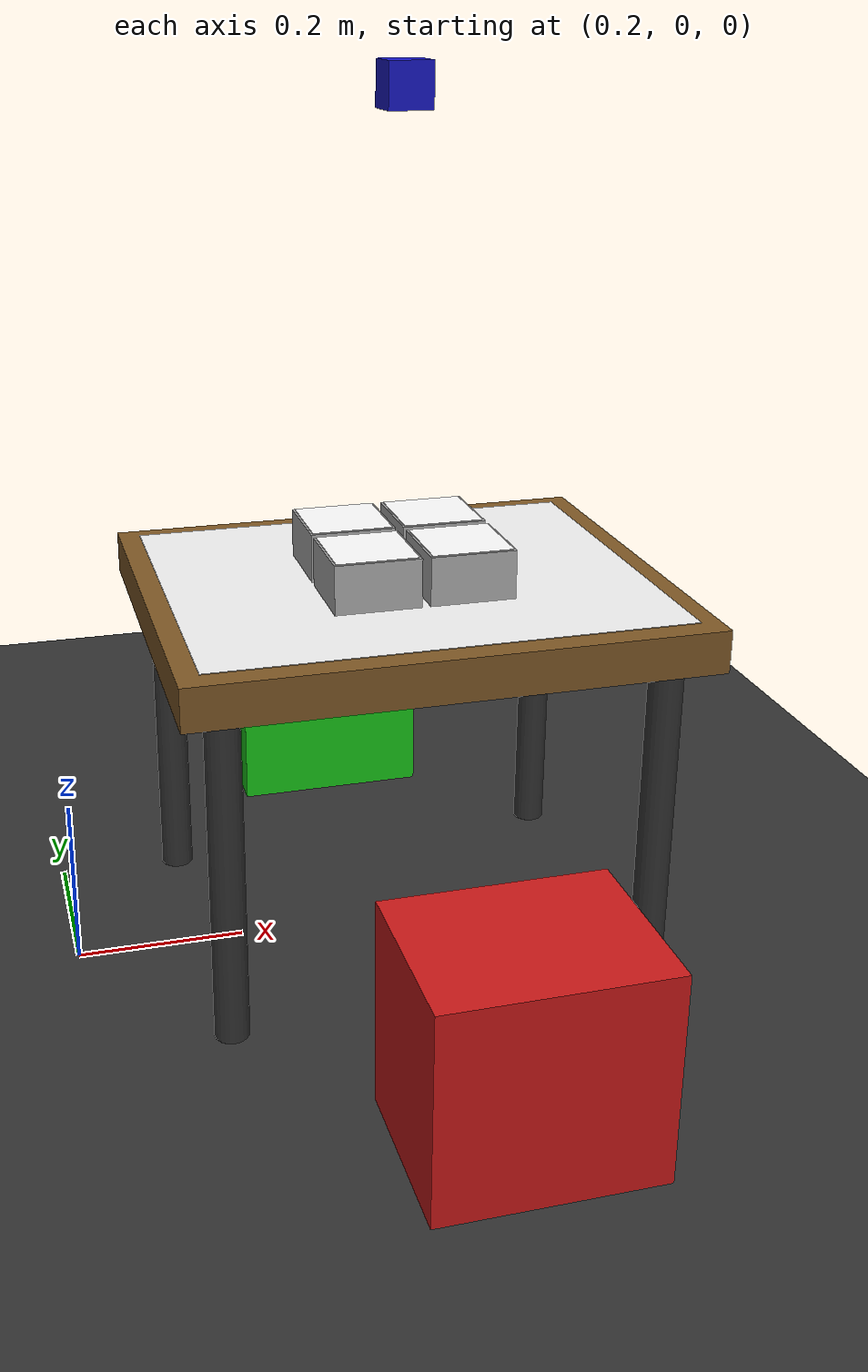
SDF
<?xml version="1.0" ?>
<sdf version="1.8">
  <world name="inspection_cell">

    <physics name="1ms" type="ignored">
      <max_step_size>0.001</max_step_size>
      <real_time_factor>1</real_time_factor>
    </physics>

    <plugin name="gz::sim::systems::Physics"          filename="ignition-gazebo-physics-system"/>
    <plugin name="gz::sim::systems::UserCommands"     filename="ignition-gazebo-user-commands-system"/>
    <plugin name="gz::sim::systems::SceneBroadcaster" filename="ignition-gazebo-scene-broadcaster-system"/>
    <plugin name="gz::sim::systems::Contact"          filename="ignition-gazebo-contact-system"/>
    <plugin name="gz::sim::systems::Sensors"          filename="ignition-gazebo-sensors-system">
      <render_engine>ogre2</render_engine>
    </plugin>

    <light name="sun" type="directional">
      <cast_shadows>false</cast_shadows>
      <pose>0 0 10 0 0 0</pose>
      <diffuse>1.0 1.0 1.0 1</diffuse>
      <specular>0.2 0.2 0.2 1</specular>
      <direction>0 0 -1</direction>
    </light>
    <light name="fill" type="directional">
      <pose>0 0 5 0 0 0</pose>
      <diffuse>0.8 0.8 0.8 1</diffuse>
      <specular>0 0 0 1</specular>
      <direction>0 0 -1</direction>
      <cast_shadows>false</cast_shadows>
    </light>

    <scene>
      <ambient>0.6 0.6 0.6 1</ambient>
      <background>0.2 0.2 0.2 1</background>
      <shadows>false</shadows>
    </scene>

    <!-- ground -->
    <model name="ground_plane">
      <static>true</static>
      <link name="link">
        <collision name="collision">
          <geometry><plane><normal>0 0 1</normal><size>20 20</size></plane></geometry>
        </collision>
        <visual name="visual">
          <geometry><plane><normal>0 0 1</normal><size>20 20</size></plane></geometry>
          <material><ambient>0.2 0.2 0.2 1</ambient><diffuse>0.2 0.2 0.2 1</diffuse></material>
        </visual>
      </link>
    </model>

    <!-- inspection table -->
    <model name="inspection_table">
      <static>true</static>
      <pose>0.6 0 0 0 0 0</pose>
      <link name="link">
        <collision name="top"><pose>0 0 0.425 0 0 0</pose>
          <geometry><box><size>0.6 0.5 0.05</size></box></geometry></collision>
        <visual name="top"><pose>0 0 0.425 0 0 0</pose>
          <geometry><box><size>0.6 0.5 0.05</size></box></geometry>
          <material><ambient>0.5 0.35 0.15 1</ambient><diffuse>0.5 0.35 0.15 1</diffuse></material></visual>
        <visual name="leg1"><pose> 0.25  0.2 0.20 0 0 0</pose>
          <geometry><cylinder><radius>0.02</radius><length>0.4</length></cylinder></geometry>
          <material><ambient>0.2 0.2 0.2 1</ambient></material></visual>
        <visual name="leg2"><pose>-0.25  0.2 0.20 0 0 0</pose>
          <geometry><cylinder><radius>0.02</radius><length>0.4</length></cylinder></geometry>
          <material><ambient>0.2 0.2 0.2 1</ambient></material></visual>
        <visual name="leg3"><pose> 0.25 -0.2 0.20 0 0 0</pose>
          <geometry><cylinder><radius>0.02</radius><length>0.4</length></cylinder></geometry>
          <material><ambient>0.2 0.2 0.2 1</ambient></material></visual>
        <visual name="leg4"><pose>-0.25 -0.2 0.20 0 0 0</pose>
          <geometry><cylinder><radius>0.02</radius><length>0.4</length></cylinder></geometry>
          <material><ambient>0.2 0.2 0.2 1</ambient></material></visual>
      </link>
    </model>

    <!-- white inspection mat -->
    <model name="inspection_mat">
      <static>true</static>
      <pose>0.6 0 0.452 0 0 0</pose>
      <link name="link">
        <visual name="visual">
          <geometry><box><size>0.55 0.45 0.001</size></box></geometry>
          <material><ambient>0.95 0.95 0.95 1</ambient><diffuse>0.95 0.95 0.95 1</diffuse></material>
        </visual>
      </link>
    </model>

    <!-- BOX 1 — bottle DEFECT (front left) -->
    <model name="box_defect_1">
      <static>true</static>
      <pose>0.655 0.055 0.48 0 0 0</pose>
      <link name="link">
        <inertial><mass>0.1</mass>
          <inertia><ixx>0.0001</ixx><iyy>0.0001</iyy><izz>0.0001</izz></inertia>
        </inertial>
        <collision name="c"><geometry><box><size>0.10 0.10 0.06</size></box></geometry></collision>
        <!-- box body -->
        <visual name="body">
          <geometry><box><size>0.10 0.10 0.06</size></box></geometry>
          <material><ambient>0.7 0.7 0.7 1</ambient><diffuse>0.7 0.7 0.7 1</diffuse></material>
        </visual>
        <!-- image panel on top face -->
        <visual name="img_top">
          <pose>0 0 0.0305 0 0 0</pose>
          <geometry><box><size>0.095 0.095 0.001</size></box></geometry>
          <material>
            <ambient>1 1 1 1</ambient>
            <diffuse>1 1 1 1</diffuse>
            <pbr>
              <metal>
                <albedo_map>/home/genji/Robotics_industrial_RL/install/kr6_r900_cell/share/kr6_r900_cell/materials/textures/bottle_defect.png</albedo_map>
              </metal>
            </pbr>
          </material>
        </visual>
      </link>
    </model>

    <!-- BOX 2 — screw DEFECT (front right) -->
    <model name="box_defect_2">
      <static>true</static>
      <pose>0.655 -0.055 0.48 0 0 0</pose>
      <link name="link">
        <inertial><mass>0.1</mass>
          <inertia><ixx>0.0001</ixx><iyy>0.0001</iyy><izz>0.0001</izz></inertia>
        </inertial>
        <collision name="c"><geometry><box><size>0.10 0.10 0.06</size></box></geometry></collision>
        <visual name="body">
          <geometry><box><size>0.10 0.10 0.06</size></box></geometry>
          <material><ambient>0.7 0.7 0.7 1</ambient><diffuse>0.7 0.7 0.7 1</diffuse></material>
        </visual>
        <visual name="img_top">
          <pose>0 0 0.0305 0 0 0</pose>
          <geometry><box><size>0.095 0.095 0.001</size></box></geometry>
          <material>
            <ambient>1 1 1 1</ambient>
            <diffuse>1 1 1 1</diffuse>
            <pbr>
              <metal>
                <albedo_map>/home/genji/Robotics_industrial_RL/install/kr6_r900_cell/share/kr6_r900_cell/materials/textures/img_000007.png</albedo_map>
              </metal>
            </pbr>
          </material>
        </visual>
      </link>
    </model>

    <!-- BOX 3 — bottle GOOD (back left) -->
    <model name="box_good_1">
      <static>true</static>
      <pose>0.545 0.055 0.48 0 0 0</pose>
      <link name="link">
        <inertial><mass>0.1</mass>
          <inertia><ixx>0.0001</ixx><iyy>0.0001</iyy><izz>0.0001</izz></inertia>
        </inertial>
        <collision name="c"><geometry><box><size>0.10 0.10 0.06</size></box></geometry></collision>
        <visual name="body">
          <geometry><box><size>0.10 0.10 0.06</size></box></geometry>
          <material><ambient>0.7 0.7 0.7 1</ambient><diffuse>0.7 0.7 0.7 1</diffuse></material>
        </visual>
        <visual name="img_top">
          <pose>0 0 0.0305 0 0 0</pose>
          <geometry><box><size>0.095 0.095 0.001</size></box></geometry>
          <material>
            <ambient>1 1 1 1</ambient>
            <diffuse>1 1 1 1</diffuse>
            <pbr>
              <metal>
                <albedo_map>/home/genji/Robotics_industrial_RL/install/kr6_r900_cell/share/kr6_r900_cell/materials/textures/bottle_good.png</albedo_map>
              </metal>
            </pbr>
          </material>
        </visual>
      </link>
    </model>

    <!-- BOX 4 — screw GOOD (back right) -->
    <model name="box_good_2">
      <static>true</static>
      <pose>0.545 -0.055 0.48 0 0 0</pose>
      <link name="link">
        <inertial><mass>0.1</mass>
          <inertia><ixx>0.0001</ixx><iyy>0.0001</iyy><izz>0.0001</izz></inertia>
        </inertial>
        <collision name="c"><geometry><box><size>0.10 0.10 0.06</size></box></geometry></collision>
        <visual name="body">
          <geometry><box><size>0.10 0.10 0.06</size></box></geometry>
          <material><ambient>0.7 0.7 0.7 1</ambient><diffuse>0.7 0.7 0.7 1</diffuse></material>
        </visual>
        <visual name="img_top">
          <pose>0 0 0.0305 0 0 0</pose>
          <geometry><box><size>0.095 0.095 0.001</size></box></geometry>
          <material>
            <ambient>1 1 1 1</ambient>
            <diffuse>1 1 1 1</diffuse>
            <pbr>
              <metal>
                <albedo_map>/home/genji/Robotics_industrial_RL/install/kr6_r900_cell/share/kr6_r900_cell/materials/textures/019.png</albedo_map>
              </metal>
            </pbr>
          </material>
        </visual>
      </link>
    </model>

    <!-- accept bin (green) -->
    <model name="accept_bin">
      <static>true</static>
      <pose>0.6 0.45 0 0 0 0</pose>
      <link name="link">
        <collision name="c"><pose>0 0 0.12 0 0 0</pose>
          <geometry><box><size>0.25 0.2 0.24</size></box></geometry></collision>
        <visual name="v"><pose>0 0 0.12 0 0 0</pose>
          <geometry><box><size>0.25 0.2 0.24</size></box></geometry>
          <material><ambient>0.1 0.8 0.1 1</ambient><diffuse>0.1 0.8 0.1 1</diffuse></material></visual>
      </link>
    </model>

    <!-- reject bin (red) -->
    <model name="reject_bin">
      <static>true</static>
      <pose>0.6 -0.45 0 0 0 0</pose>
      <link name="link">
        <collision name="c"><pose>0 0 0.12 0 0 0</pose>
          <geometry><box><size>0.25 0.2 0.24</size></box></geometry></collision>
        <visual name="v"><pose>0 0 0.12 0 0 0</pose>
          <geometry><box><size>0.25 0.2 0.24</size></box></geometry>
          <material><ambient>0.8 0.1 0.1 1</ambient><diffuse>0.8 0.1 0.1 1</diffuse></material></visual>
      </link>
    </model>

    <!-- overhead camera -->
    <model name="inspection_camera">
      <static>true</static>
      <pose>0.6 0 1.0 0 1.5708 0</pose>
      <link name="link">
        <visual name="visual">
          <geometry><box><size>0.05 0.05 0.05</size></box></geometry>
          <material><ambient>0.1 0.1 0.8 1</ambient></material>
        </visual>
        <sensor name="camera" type="camera">
          <always_on>1</always_on>
          <update_rate>30</update_rate>
          <camera>
            <horizontal_fov>0.5</horizontal_fov>
            <image><width>1280</width><height>1280</height><format>R8G8B8</format></image>
            <clip><near>0.05</near><far>5</far></clip>
            <distortion>
              <k1>0</k1><k2>0</k2><k3>0</k3><p1>0</p1><p2>0</p2>
            </distortion>
            <noise>
              <type>none</type>
            </noise>
          </camera>
          <topic>/inspection_cam/image_raw</topic>
          <ignition_frame_id>camera_link</ignition_frame_id>
        </sensor>
      </link>
    </model>

  </world>
</sdf>
